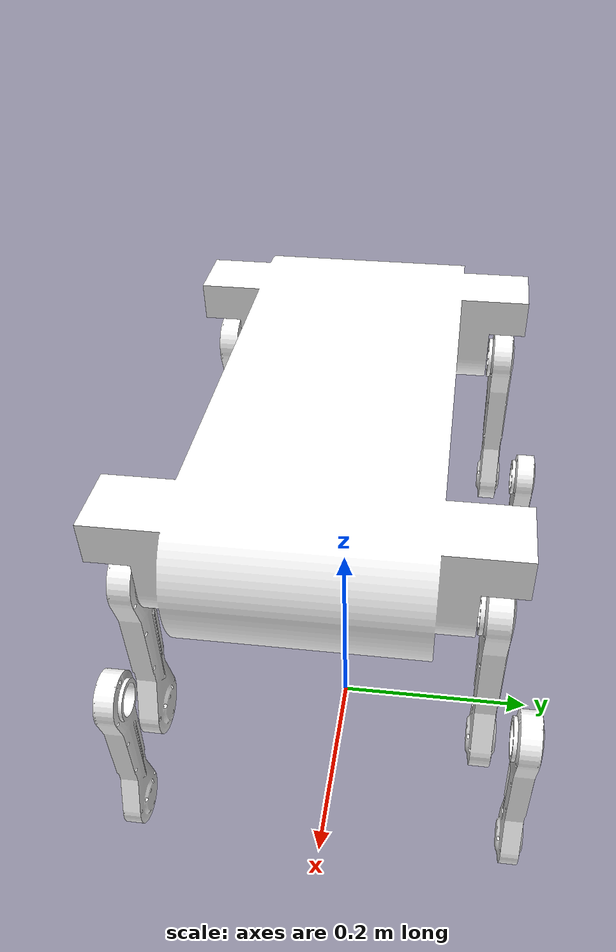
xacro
<?xml version='1.0'?>
<robot name='protobot_dog' xmlns:xacro='http://ros.org/wiki/xacro'>
  <xacro:include filename='protobot_dog.gazebo.xacro'/>
  <link name='base_footprint'/>
  <link name='base_link'>
    <inertial>
      <origin xyz='0 0 0' rpy='0 0 0'/>
      <mass value='5.5049218e+00'/>
      <inertia ixx='2.7204475e-02' ixy='0' ixz='0' iyy='1.0887486e-01' iyz='0' izz='1.2349825e-01'/>
    </inertial>
    <visual>
      <origin xyz='0 0 0.005' rpy='0 0 3.141593'/>
      <geometry>
        <mesh filename='package://protobot_dog_description/meshes/base_link.dae'/>
      </geometry>
      <material name=''>
        <color rgba='1 1 1 1'/>
      </material>
    </visual>
    <collision>
      <origin xyz='0 0 0' rpy='0 0 0'/>
      <geometry>
        <mesh filename='package://protobot_dog_description/meshes/base_link.stl'/>
      </geometry>
    </collision>
  </link>

  <joint name='base_joint' type='fixed'>
    <origin xyz='0 0 0.353' ryy='0 0 0'/>
    <parent link='base_footprint'/>
    <child link='base_link'/>
  </joint>

  <xacro:macro name='leg_link' params='prefix'>
    <link name='${prefix}_upper_link'>
      <inertial>
        <origin xyz='0 0 0' rpy='0 0 0'/>
        <mass value='4.8438790e-01'/>
        <inertia ixx='4.4901373e-03' ixy='0' ixz='0' iyy='4.5162744e-03' iyz='0' izz='9.8795277e-05'/>
      </inertial>
      <visual>
        <origin xyz='0 0 -0.075' rpy='0 0.525 0'/>
        <geometry>
          <mesh filename='package://protobot_dog_description/meshes/leg.dae'/>
        </geometry>
        <material name=''>
          <color rgba='1 1 1 1'/>
        </material>
      </visual>
      <collision>
        <origin xyz='0 0 0' rpy='0 0 0'/>
        <geometry>
          <mesh filename='package://protobot_dog_description/meshes/leg.stl'/>
        </geometry>
      </collision>
    </link>

    <link name='${prefix}_lower_link'>
      <inertial>
        <origin xyz='0 0 0' rpy='0 0 0'/>
        <mass value='2.3214904e-01'/>
        <inertia ixx='2.1519552e-03' ixy='0' ixz='0' iyy='2.1644817e-03' iyz='0' izz='4.7348888e-05'/>
      </inertial>
      <visual>
        <origin xyz='0 0 -0.075' rpy='0 0.525 0'/>
        <geometry>
          <mesh filename='package://protobot_dog_description/meshes/leg.dae'/>
        </geometry>
        <material name=''>
          <color rgba='1 1 1 1'/>
        </material>
      </visual>
      <collision>
        <origin xyz='0 0 0' rpy='0 0 0'/>
        <geometry>
          <mesh filename='package://protobot_dog_description/meshes/leg.stl'/>
        </geometry>
      </collision>
    </link>
  </xacro:macro>

  <xacro:macro name='leg_joint' params='prefix *origin *axis'>
    <joint name='${prefix}_upper_joint' type='revolute'>
      <xacro:insert_block name='origin'/>
      <parent link='base_link'/>
      <child link='${prefix}_upper_link'/>
      <xacro:insert_block name='axis'/>
      <limit effort="5" velocity="3.6" lower="-1.5707" upper="1.5707"/>
    </joint>

    <joint name='${prefix}_lower_joint' type='continuous'>
      <origin xyz='0 0.04 -0.15' rpy='0 0 0'/>
      <parent link='${prefix}_upper_link'/>
      <child link='${prefix}_lower_link'/>
      <xacro:insert_block name='axis'/>
      <limit effort="5" velocity="3.6"/>
    </joint>
  </xacro:macro>

  <leg_link prefix='rf'/>
  <leg_link prefix='lf'/>
  <leg_link prefix='rb'/>
  <leg_link prefix='lb'/>

  <leg_joint prefix='rf'>
    <origin xyz='0.18 -0.138 -0.025' rpy='0 0 3.141593'/>
    <axis xyz="0 1 0" />
  </leg_joint>

  <leg_joint prefix='lf'>
    <origin xyz='0.18 0.138 -0.025' rpy='0 0 0'/>
    <axis xyz="0 -1 0" />
  </leg_joint>

  <leg_joint prefix='rb'>
    <origin xyz='-0.18 -0.138 -0.025' rpy='0 0 3.141593'/>
    <axis xyz="0 1 0" />
  </leg_joint>

  <leg_joint prefix='lb'>
    <origin xyz='-0.18 0.138 -0.025' rpy='0 0 0'/>
    <axis xyz="0 -1 0" />
  </leg_joint>
</robot>
